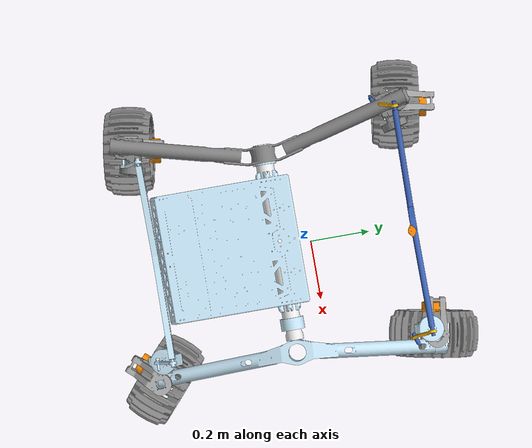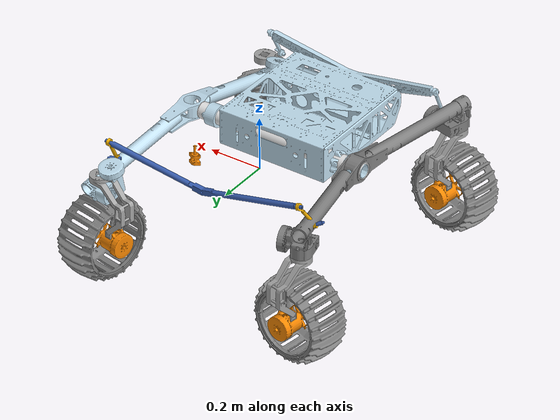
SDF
<sdf version="1.6">
    <model name="rover">
        <self_collide>true</self_collide>
        <link name="chassis">
            <frame name="chassis_frame">
                <pose>0 0 0 0 -0 0</pose>
            </frame>
            <visual name="chassis_0_chassis_visual">
                <pose>-0.018984610583012817564 -0.11072106393638803112 0.061040732012669463025
                    1.110223024625156146e-15 6.106226635438357028e-16 2.7755575615628895022e-17</pose>
                <geometry>
                    <mesh>
                        <uri>file://../meshes/chassis.stl</uri>
                    </mesh>
                </geometry>
                <material>
                    <ambient>0.76862745098039220171 0.88627450980392152857 0.95294117647058818044 1</ambient>
                    <diffuse>0.76862745098039220171 0.88627450980392152857 0.95294117647058818044 1</diffuse>
                    <specular>0.1 0.1 0.1 1</specular>
                    <emissive>0 0 0 0</emissive>
                </material>
            </visual>
            <collision name="chassis_0_chassis_visual">
                <pose>-0.018984610583012817564 -0.11072106393638803112 0.061040732012669463025
                    1.110223024625156146e-15 6.106226635438357028e-16 2.7755575615628895022e-17</pose>
                <geometry>
                    <mesh>
                        <uri>file://../meshes/chassis.stl</uri>
                    </mesh>
                </geometry>
            </collision>
            <inertial>
                <pose frame="chassis_frame">-0.019045218507636949012 -0.087993046828656579228
                    0.087385944696221115602 0 0 0</pose>
                <mass>7.6906345059941232378</mass>
                <inertia>
                    <ixx>0.44733237602572062386</ixx>
                    <ixy>-0.00012066720320076113743</ixy>
                    <ixz>-0.00020251363375001273179</ixz>
                    <iyy>0.19488738906767782977</iyy>
                    <iyz>0.0095851903407346023683</iyz>
                    <izz>0.56806231569085630095</izz>
                </inertia>
            </inertial>
        </link>

        <joint name="cross_right_join" type="fixed">
            <pose>-0.15498461058301302162 -0.11072106393638810051 0.061040732012669504658
                -1.5707963267948976682 -9.853229343548260352e-16 1.5707963267948970021</pose>
            <parent>chassis</parent>
            <child>crossbar</child>
            <axis>
                <xyz>0 0 1</xyz>
                <limit>
                    <effort>1</effort>
                    <velocity>20</velocity>
                </limit>
            </axis>
        </joint>

        <link name="crossbar">
            <frame name="crossbar_frame">
                <pose>0 0 0 0 -0 0</pose>
            </frame>
            <visual name="crossbar_0_crossbar_visual">
                <pose>-0.013984610583003154183 -0.11072106393638825317 0.061040732012669685069
                    9.8532293435482623241e-16 -9.4368957093138088999e-16 -8.0491169285323671687e-16</pose>
                <geometry>
                    <mesh>
                        <uri>file://../meshes/crossbar.stl</uri>
                    </mesh>
                </geometry>
                <material>
                    <ambient>0.91764705882352937127 0.91764705882352937127 0.91764705882352937127 1</ambient>
                    <diffuse>0.91764705882352937127 0.91764705882352937127 0.91764705882352937127 1</diffuse>
                    <specular>0.1 0.1 0.1 1</specular>
                    <emissive>0 0 0 0</emissive>
                </material>
            </visual>
            <collision name="crossbar_0_crossbar_visual">
                <pose>-0.013984610583003154183 -0.11072106393638825317 0.061040732012669685069
                    9.8532293435482623241e-16 -9.4368957093138088999e-16 -8.0491169285323671687e-16</pose>
                <geometry>
                    <mesh>
                        <uri>file://../meshes/crossbar.stl</uri>
                    </mesh>
                </geometry>
            </collision>
            <inertial>
                <pose frame="crossbar_frame">-0.01498529760685677302 -0.11181097571869365315
                    0.061036690632642422172 0 0 0</pose>
                <mass>0.61929085260862071216</mass>
                <inertia>
                    <ixx>0.00052067562621966527285</ixx>
                    <ixy>-2.4803302957222558809e-10</ixy>
                    <ixz>-1.5472398729557212259e-08</ixz>
                    <iyy>0.022394047093070145599</iyy>
                    <iyz>6.3774127556000729779e-09</iyz>
                    <izz>0.022366401167997831956</izz>
                </inertia>
            </inertial>
        </link>

        <link name="leftleg">
            <frame name="leftleg_frame">
                <pose>0 0 0 0 -0 0</pose>
            </frame>
            <visual name="leftleg_0_leftleg_visual">
                <pose>0.36221017026267893213 -0.11008829714327064697 0.056737664837007865948
                    0.003093691756726896832 -0.041423386501243872337 1.4962286455734958857</pose>
                <geometry>
                    <mesh>
                        <uri>file://../meshes/leftleg.stl</uri>
                    </mesh>
                </geometry>
                <material>
                    <ambient>0.76862745098039220171 0.88627450980392152857 0.95294117647058818044 1</ambient>
                    <diffuse>0.76862745098039220171 0.88627450980392152857 0.95294117647058818044 1</diffuse>
                    <specular>0.1 0.1 0.1 1</specular>
                    <emissive>0 0 0 0</emissive>
                </material>
            </visual>
            <collision name="leftleg_0_leftleg_visual">
                <pose>0.36221017026267893213 -0.11008829714327064697 0.056737664837007865948
                    0.003093691756726896832 -0.041423386501243872337 1.4962286455734958857</pose>
                <geometry>
                    <mesh>
                        <uri>file://../meshes/leftleg.stl</uri>
                    </mesh>
                </geometry>
            </collision>
            <inertial>
                <pose frame="leftleg_frame">0.33995157221003874382 -0.1090551977097206221
                    0.057296233354434504548 0 0 0</pose>
                <mass>3.3446456224080134412</mass>
                <inertia>
                    <ixx>0.49945091029511384795</ixx>
                    <ixy>-0.00023476695407842736803</ixy>
                    <ixz>-0.00019928523963247870968</ixz>
                    <iyy>0.0095684268043393690822</iyy>
                    <iyz>-0.0065795527112262825256</iyz>
                    <izz>0.50361213846775609859</izz>
                </inertia>
            </inertial>
        </link>

        <link name="rightleg">
            <frame name="rightleg_frame">
                <pose>0 0 0 0 -0 0</pose>
            </frame>
            <visual name="rightleg_0_rightleg_visual">
                <pose>-0.5903682448784290937 -0.042448825089024810886 0.21411510031031238954
                    -0.020571391745400468415 -0.042170290127263698743 1.423299785301544329</pose>
                <geometry>
                    <mesh>
                        <uri>file://../meshes/rightleg.stl</uri>
                    </mesh>
                </geometry>
                <material>
                    <ambient>0.49803921568627451677 0.49803921568627451677 0.49803921568627451677 1</ambient>
                    <diffuse>0.49803921568627451677 0.49803921568627451677 0.49803921568627451677 1</diffuse>
                    <specular>0.1 0.1 0.1 1</specular>
                    <emissive>0 0 0 0</emissive>
                </material>
            </visual>
            <collision name="rightleg_0_rightleg_visual">
                <pose>-0.5903682448784290937 -0.042448825089024810886 0.21411510031031238954
                    -0.020571391745400468415 -0.042170290127263698743 1.423299785301544329</pose>
                <geometry>
                    <mesh>
                        <uri>file://../meshes/rightleg.stl</uri>
                    </mesh>
                </geometry>
            </collision>
            <inertial>
                <pose frame="rightleg_frame">-0.36917837479022663771 -0.10658783963882711987
                    0.057339629036112255145 0 0 0</pose>
                <mass>3.3445666178870396834</mass>
                <inertia>
                    <ixx>0.49156963066927000794</ixx>
                    <ixy>0.0014055870503054026643</ixy>
                    <ixz>0.00025516296390700024576</ixz>
                    <iyy>0.0095431240585234344137</iyy>
                    <iyz>-0.0075396783718781144185</iyz>
                    <izz>0.49564703194241671591</izz>
                </inertia>
            </inertial>
        </link>

        <joint name="left_leg" type="revolute">
            <pose>0.28586538941699990435 -0.11072106393638840582 0.061040732012669934869
                -1.5707963267948974462 -0.041538685404483431662 1.5707963267948958919</pose>
            <parent>crossbar</parent>
            <child>leftleg</child>
            <axis>
                <xyz>0 0 1</xyz>
                <limit>
                    <effort>1</effort>
                    <velocity>20</velocity>
                </limit>
            </axis>
        </joint>

        <joint name="right_leg" type="revolute">
            <pose>-0.31583461058300627 -0.11072106393638782296 0.061040732012669379758
                1.5707963267948961139 -0.042632639835203593737 1.570796326794901443</pose>
            <parent>crossbar</parent>
            <child>rightleg</child>
            <axis>
                <xyz>0 0 1</xyz>
                <limit>
                    <effort>1</effort>
                    <velocity>20</velocity>
                </limit>
            </axis>
        </joint>

        <link name="ankle">
            <frame name="ankle_frame">
                <pose>0 0 0 0 -0 0</pose>
            </frame>
            <visual name="ankle_0_ankle_visual">
                <pose>-0.071463372585178361329 -1.1652578238954138801 0.18583772248268312643
                    -0.093930753454477058928 -0.079431358874689383942 -2.5769708359922121055</pose>
                <geometry>
                    <mesh>
                        <uri>file://../meshes/ankle.stl</uri>
                    </mesh>
                </geometry>
                <material>
                    <ambient>0.64705882352941179736 0.64705882352941179736 0.64705882352941179736 1</ambient>
                    <diffuse>0.64705882352941179736 0.64705882352941179736 0.64705882352941179736 1</diffuse>
                    <specular>0.1 0.1 0.1 1</specular>
                    <emissive>0 0 0 0</emissive>
                </material>
            </visual>
            <collision name="ankle_0_ankle_visual">
                <pose>-0.071463372585178361329 -1.1652578238954138801 0.18583772248268312643
                    -0.093930753454477058928 -0.079431358874689383942 -2.5769708359922121055</pose>
                <geometry>
                    <mesh>
                        <uri>file://../meshes/ankle.stl</uri>
                    </mesh>
                </geometry>
            </collision>
            <inertial>
                <pose frame="ankle_frame">-0.41132490899477608393 -0.51127561406555077639
                    -0.056053630275686432138 0 0 0</pose>
                <mass>0.40704209227750925981</mass>
                <inertia>
                    <ixx>0.0023687441431134445904</ixx>
                    <ixy>-0.00011109429449291893278</ixy>
                    <ixz>0.00011899695095959618137</ixz>
                    <iyy>0.0016301858278559946177</iyy>
                    <iyz>0.00080301967830594372499</iyz>
                    <izz>0.0011868660304272448877</izz>
                </inertia>
            </inertial>
        </link>

        <link name="anklemotor">
            <frame name="anklemotor_frame">
                <pose>0 0 0 0 -0 0</pose>
            </frame>
            <visual name="anklemotor_0_anklemotor_visual">
                <pose>-0.071463372585179027463 -1.1652578238954147682 0.18583772248268515259
                    -0.093930753454476767494 -0.079431358874689550476 -2.5769708359922072205</pose>
                <geometry>
                    <mesh>
                        <uri>file://../meshes/anklemotor.stl</uri>
                    </mesh>
                </geometry>
                <material>
                    <ambient>0.97254901960784312376 0.52941176470588235947 0.0039215686274509803377
                        1</ambient>
                    <diffuse>0.97254901960784312376 0.52941176470588235947 0.0039215686274509803377
                        1</diffuse>
                    <specular>0.1 0.1 0.1 1</specular>
                    <emissive>0 0 0 0</emissive>
                </material>
            </visual>
            <collision name="anklemotor_0_anklemotor_visual">
                <pose>-0.071463372585179027463 -1.1652578238954147682 0.18583772248268515259
                    -0.093930753454476767494 -0.079431358874689550476 -2.5769708359922072205</pose>
                <geometry>
                    <mesh>
                        <uri>file://../meshes/anklemotor.stl</uri>
                    </mesh>
                </geometry>
            </collision>
            <inertial>
                <pose frame="anklemotor_frame">-0.40968916125757898206 -0.49891881678275951106
                    -0.22448362246372244311 0 0 0</pose>
                <mass>0.67137253036121313787</mass>
                <inertia>
                    <ixx>0.0010191117139849328703</ixx>
                    <ixy>-5.3853662857452318301e-05</ixy>
                    <ixz>5.6432125257604249269e-07</ixz>
                    <iyy>0.00067672931100973493859</iyy>
                    <iyz>4.3450321059603098432e-06</iyz>
                    <izz>0.0010125342350121610373</izz>
                </inertia>
            </inertial>
        </link>

        <link name="wheel">
            <frame name="wheel_frame">
                <pose>0 0 0 0 -0 0</pose>
            </frame>
            <visual name="wheel_0_wheel_visual">
                <pose>-0.57909185567576637599 -1.0655224958163223015 -0.83443598795523965528
                    -2.753275222454361959 -0.39488247600369696944 -0.94888243733714527917</pose>
                <geometry>
                    <mesh>
                        <uri>file://../meshes/wheel.stl</uri>
                    </mesh>
                </geometry>
                <material>
                    <ambient>0.49803921568627451677 0.49803921568627451677 0.49803921568627451677 1</ambient>
                    <diffuse>0.49803921568627451677 0.49803921568627451677 0.49803921568627451677 1</diffuse>
                    <specular>0.1 0.1 0.1 1</specular>
                    <emissive>0 0 0 0</emissive>
                </material>
            </visual>
            <collision name="wheel_0_wheel_visual">
                <pose>-0.57909185567576637599 -1.0655224958163223015 -0.83443598795523965528
                    -2.753275222454361959 -0.39488247600369696944 -0.94888243733714527917</pose>
                <geometry>
                    <mesh>
                        <uri>file://../meshes/wheel.stl</uri>
                    </mesh>
                </geometry>
            </collision>
            <inertial>
                <pose frame="wheel_frame">-0.42123166936869971266 -0.57403392040053025092
                    -0.22644765768710883869 0 0 0</pose>
                <mass>1.8501383764095646889</mass>
                <inertia>
                    <ixx>0.021046829662359201746</ixx>
                    <ixy>0.0017930040634647134712</ixy>
                    <ixz>-5.5066377919514270347e-05</ixz>
                    <iyy>0.032435394315342591653</iyy>
                    <iyz>0.00019776908771795901872</iyz>
                    <izz>0.020795069893949139767</izz>
                </inertia>
            </inertial>
        </link>

        <joint name="fr_wheel" type="continuous">
            <pose>-0.42123353808338359627 -0.57404635246721680275 -0.22644783618645392131
                -1.5523922371361404959 -0.54913382703349544744 -0.16202029021946706688</pose>
            <parent>anklemotor</parent>
            <child>wheel</child>
            <axis>
                <xyz>0 0 1</xyz>
                <limit>
                    <effort>1</effort>
                    <velocity>20</velocity>
                </limit>
            </axis>
        </joint>

        <joint name="fr_ankle_motor_join" type="fixed">
            <pose>-0.38855374842347956132 -0.51999048566159833396 -0.18658432381666412159
                -1.5732240472268090858 -0.11781766767463958123 -1.7228866220106788809</pose>
            <parent>ankle</parent>
            <child>anklemotor</child>
            <axis>
                <xyz>0 0 1</xyz>
                <limit>
                    <effort>1</effort>
                    <velocity>20</velocity>
                </limit>
            </axis>
        </joint>

        <joint name="fr_ankle" type="revolute">
            <pose>-0.42145275351996286384 -0.57930091843673914287 0.014499101494077099028
                -0.013426940540500600929 0.0084830922255985583003 -2.5781535382368270248</pose>
            <parent>rightleg</parent>
            <child>ankle</child>
            <axis>
                <xyz>0 0 1</xyz>
                <limit>
                    <effort>1</effort>
                    <velocity>20</velocity>
                </limit>
            </axis>
        </joint>

        <link name="ankle_2">
            <frame name="ankle_2_frame">
                <pose>0 0 0 0 -0 0</pose>
            </frame>
            <visual name="ankle_2_0_ankle_visual">
                <pose>-0.071296383737228005706 -0.21576333931428132162 0.20091896170563081081
                    -0.093892758905011530768 -0.079371855911093303071 -2.5725330931763328302</pose>
                <geometry>
                    <mesh>
                        <uri>file://../meshes/ankle.stl</uri>
                    </mesh>
                </geometry>
                <material>
                    <ambient>0.64705882352941179736 0.64705882352941179736 0.64705882352941179736 1</ambient>
                    <diffuse>0.64705882352941179736 0.64705882352941179736 0.64705882352941179736 1</diffuse>
                    <specular>0.1 0.1 0.1 1</specular>
                    <emissive>0 0 0 0</emissive>
                </material>
            </visual>
            <collision name="ankle_2_0_ankle_visual">
                <pose>-0.071296383737228005706 -0.21576333931428132162 0.20091896170563081081
                    -0.093892758905011530768 -0.079371855911093303071 -2.5725330931763328302</pose>
                <geometry>
                    <mesh>
                        <uri>file://../meshes/ankle.stl</uri>
                    </mesh>
                </geometry>
            </collision>
            <inertial>
                <pose frame="ankle_2_frame">-0.41404167277477293974 0.4367032226847701315
                    -0.040996464754993966473 0 0 0</pose>
                <mass>0.40704209227750925981</mass>
                <inertia>
                    <ixx>0.0023696999616568343097</ixx>
                    <ixy>-0.000107866893321073378</ixy>
                    <ixz>0.00011551318793506496114</ixz>
                    <iyy>0.0016292134682331909507</iyy>
                    <iyz>0.00080353265812497067563</iyz>
                    <izz>0.0011868825715066490777</izz>
                </inertia>
            </inertial>
        </link>

        <link name="anklemotor_2">
            <frame name="anklemotor_2_frame">
                <pose>0 0 0 0 -0 0</pose>
            </frame>
            <visual name="anklemotor_2_0_anklemotor_visual">
                <pose>-0.071296383737229226951 -0.21576333931428168245 0.20091896170563358637
                    -0.093892758905010725856 -0.079371855911093136537 -2.5725330931763283893</pose>
                <geometry>
                    <mesh>
                        <uri>file://../meshes/anklemotor.stl</uri>
                    </mesh>
                </geometry>
                <material>
                    <ambient>0.97254901960784312376 0.52941176470588235947 0.0039215686274509803377
                        1</ambient>
                    <diffuse>0.97254901960784312376 0.52941176470588235947 0.0039215686274509803377
                        1</diffuse>
                    <specular>0.1 0.1 0.1 1</specular>
                    <emissive>0 0 0 0</emissive>
                </material>
            </visual>
            <collision name="anklemotor_2_0_anklemotor_visual">
                <pose>-0.071296383737229226951 -0.21576333931428168245 0.20091896170563358637
                    -0.093892758905010725856 -0.079371855911093136537 -2.5725330931763283893</pose>
                <geometry>
                    <mesh>
                        <uri>file://../meshes/anklemotor.stl</uri>
                    </mesh>
                </geometry>
            </collision>
            <inertial>
                <pose frame="anklemotor_2_frame">-0.41244893443267016675 0.44906718843957216247
                    -0.20942634308303054169 0 0 0</pose>
                <mass>0.67137253036121313787</mass>
                <inertia>
                    <ixx>0.0010195831809356353023</ixx>
                    <ixy>-5.2331428565332443765e-05</ixy>
                    <ixz>5.4550951862465145248e-07</ixz>
                    <iyy>0.00067625776577813836998</iyy>
                    <iyz>4.3437514553092894279e-06</iyz>
                    <izz>0.0010125343132930508371</izz>
                </inertia>
            </inertial>
        </link>

        <link name="wheel_2">
            <frame name="wheel_2_frame">
                <pose>0 0 0 0 -0 0</pose>
            </frame>
            <visual name="wheel_2_0_wheel_visual">
                <pose>-0.59191281132994022496 -0.13543399422394486464 0.37886146746635146476
                    0.60989431643729674626 0.60821660692030210527 -2.3856202431030828492</pose>
                <geometry>
                    <mesh>
                        <uri>file://../meshes/wheel.stl</uri>
                    </mesh>
                </geometry>
                <material>
                    <ambient>0.49803921568627451677 0.49803921568627451677 0.49803921568627451677 1</ambient>
                    <diffuse>0.49803921568627451677 0.49803921568627451677 0.49803921568627451677 1</diffuse>
                    <specular>0.1 0.1 0.1 1</specular>
                    <emissive>0 0 0 0</emissive>
                </material>
            </visual>
            <collision name="wheel_2_0_wheel_visual">
                <pose>-0.59191281132994022496 -0.13543399422394486464 0.37886146746635146476
                    0.60989431643729674626 0.60821660692030210527 -2.3856202431030828492</pose>
                <geometry>
                    <mesh>
                        <uri>file://../meshes/wheel.stl</uri>
                    </mesh>
                </geometry>
            </collision>
            <inertial>
                <pose frame="wheel_2_frame">-0.4236575504094848843 0.37390155682948983396
                    -0.21139113230179845671 0 0 0</pose>
                <mass>1.8501383764095646889</mass>
                <inertia>
                    <ixx>0.021077490409486369233</ixx>
                    <ixy>0.0017353037999128047199</ixy>
                    <ixz>-4.8096640530989524071e-05</ixz>
                    <iyy>0.032452151577053167664</iyy>
                    <iyz>0.00019723625957733008297</iyz>
                    <izz>0.020747651885111247083</izz>
                </inertia>
            </inertial>
        </link>

        <joint name="br_wheel" type="continuous">
            <pose>-0.42365943686257667711 0.37388912823338460445 -0.21139135930900027072
                1.5473808873313013024 0.83537753826255611855 2.9762558489189330224</pose>
            <parent>anklemotor_2</parent>
            <child>wheel_2</child>
            <axis>
                <xyz>0 0 1</xyz>
                <limit>
                    <effort>1</effort>
                    <velocity>20</velocity>
                </limit>
            </axis>
        </joint>

        <joint name="br_ankle_motor_join" type="fixed">
            <pose>-0.39122282940595881628 0.42808957830767546682 -0.17152555045945452883
                -1.5731538166635095077 -0.11780713592513426813 -1.7184541204398500192</pose>
            <parent>ankle_2</parent>
            <child>anklemotor_2</child>
            <axis>
                <xyz>0 0 1</xyz>
                <limit>
                    <effort>1</effort>
                    <velocity>20</velocity>
                </limit>
            </axis>
        </joint>

        <joint name="br_ankle" type="revolute">
            <pose>-0.42387231097985222927 0.36863360286004592803 0.029555563132896728318
                -0.013389134630214110516 0.0085426398791803651034 -2.5737124599288745408</pose>
            <parent>rightleg</parent>
            <child>ankle_2</child>
            <axis>
                <xyz>0 0 1</xyz>
                <limit>
                    <effort>1</effort>
                    <velocity>20</velocity>
                </limit>
            </axis>
        </joint>

        <link name="ankle_3">
            <frame name="ankle_3_frame">
                <pose>0 0 0 0 -0 0</pose>
            </frame>
            <visual name="ankle_3_0_ankle_visual">
                <pose>0.40643869698355328257 0.088640369813880487415 0.20525682905274339474
                    -0.066995113399902411766 -0.087979723050423522257 0.0036822953390785845805</pose>
                <geometry>
                    <mesh>
                        <uri>file://../meshes/ankle.stl</uri>
                    </mesh>
                </geometry>
                <material>
                    <ambient>0.64705882352941179736 0.64705882352941179736 0.64705882352941179736 1</ambient>
                    <diffuse>0.64705882352941179736 0.64705882352941179736 0.64705882352941179736 1</diffuse>
                    <specular>0.1 0.1 0.1 1</specular>
                    <emissive>0 0 0 0</emissive>
                </material>
            </visual>
            <collision name="ankle_3_0_ankle_visual">
                <pose>0.40643869698355328257 0.088640369813880487415 0.20525682905274339474
                    -0.066995113399902411766 -0.087979723050423522257 0.0036822953390785845805</pose>
                <geometry>
                    <mesh>
                        <uri>file://../meshes/ankle.stl</uri>
                    </mesh>
                </geometry>
            </collision>
            <inertial>
                <pose frame="ankle_3_frame">0.35008749608906419848 -0.63928276986723797659
                    -0.056778409261591999968 0 0 0</pose>
                <mass>0.40704209227750925981</mass>
                <inertia>
                    <ixx>0.0020702443386690022945</ixx>
                    <ixy>-0.00036131255391404746864</ixy>
                    <ixz>-0.00052896015970243343788</ixz>
                    <iyy>0.0019703152758473942326</iyy>
                    <iyz>-0.00059978318981331990144</iyz>
                    <izz>0.001145236386880281931</izz>
                </inertia>
            </inertial>
        </link>

        <link name="anklemotor_3">
            <frame name="anklemotor_3_frame">
                <pose>0 0 0 0 -0 0</pose>
            </frame>
            <visual name="anklemotor_3_0_anklemotor_visual">
                <pose>0.40643869698355622466 0.088640369813880237615 0.20525682905274650336
                    -0.066995113399902411766 -0.087979723050423036534 0.0036822953390838282159</pose>
                <geometry>
                    <mesh>
                        <uri>file://../meshes/anklemotor.stl</uri>
                    </mesh>
                </geometry>
                <material>
                    <ambient>0.97254901960784312376 0.52941176470588235947 0.0039215686274509803377
                        1</ambient>
                    <diffuse>0.97254901960784312376 0.52941176470588235947 0.0039215686274509803377
                        1</diffuse>
                    <specular>0.1 0.1 0.1 1</specular>
                    <emissive>0 0 0 0</emissive>
                </material>
            </visual>
            <collision name="anklemotor_3_0_anklemotor_visual">
                <pose>0.40643869698355622466 0.088640369813880237615 0.20525682905274650336
                    -0.066995113399902411766 -0.087979723050423036534 0.0036822953390838282159</pose>
                <geometry>
                    <mesh>
                        <uri>file://../meshes/anklemotor.stl</uri>
                    </mesh>
                </geometry>
            </collision>
            <inertial>
                <pose frame="anklemotor_3_frame">0.34356958927759961853 -0.64436212969751449631
                    -0.22546671760784542382 0 0 0</pose>
                <mass>0.67137253036121313787</mass>
                <inertia>
                    <ixx>0.00087459461567876428667</ixx>
                    <ixy>-0.00017727231816404851253</ixy>
                    <ixz>-8.7106338447610197502e-06</ixz>
                    <iyy>0.00082170335148765388626</iyy>
                    <iyz>-1.0009155858380626528e-05</iyz>
                    <izz>0.0010120772928404072038</izz>
                </inertia>
            </inertial>
        </link>

        <link name="wheel_3">
            <frame name="wheel_3_frame">
                <pose>0 0 0 0 -0 0</pose>
            </frame>
            <visual name="wheel_3_0_wheel_visual">
                <pose>1.1064462737994824604 -0.51112908388675504234 -0.57426922511780653657
                    2.9561240673954172209 0.19046120612249708981 1.6992892408349737909</pose>
                <geometry>
                    <mesh>
                        <uri>file://../meshes/wheel.stl</uri>
                    </mesh>
                </geometry>
                <material>
                    <ambient>0.49803921568627451677 0.49803921568627451677 0.49803921568627451677 1</ambient>
                    <diffuse>0.49803921568627451677 0.49803921568627451677 0.49803921568627451677 1</diffuse>
                    <specular>0.1 0.1 0.1 1</specular>
                    <emissive>0 0 0 0</emissive>
                </material>
            </visual>
            <collision name="wheel_3_0_wheel_visual">
                <pose>1.1064462737994824604 -0.51112908388675504234 -0.57426922511780653657
                    2.9561240673954172209 0.19046120612249708981 1.6992892408349737909</pose>
                <geometry>
                    <mesh>
                        <uri>file://../meshes/wheel.stl</uri>
                    </mesh>
                </geometry>
            </collision>
            <inertial>
                <pose frame="wheel_3_frame">0.39318187075113564255 -0.58676015761441591145
                    -0.22546483873732875436 0 0 0</pose>
                <mass>1.8501383764095646889</mass>
                <inertia>
                    <ixx>0.02581568406026825066</ixx>
                    <ixy>0.0059412001273701116333</ixy>
                    <ixz>6.738402105032155118e-05</ixz>
                    <iyy>0.027594900271284465709</iyy>
                    <iyz>0.00010089962723630451901</iyz>
                    <izz>0.02086670954009769291</izz>
                </inertia>
            </inertial>
        </link>

        <joint name="fl_wheel" type="continuous">
            <pose>0.3931900446228185908 -0.5867506048328156032 -0.22546472727392580238
                -1.5813194609647120981 0.26194503485836651002 2.4277975421701278869</pose>
            <parent>anklemotor_3</parent>
            <child>wheel_3</child>
            <axis>
                <xyz>0 0 1</xyz>
                <limit>
                    <effort>1</effort>
                    <velocity>20</velocity>
                </limit>
            </axis>
        </joint>

        <joint name="fl_ankle_motor_join" type="fixed">
            <pose>0.33649524595220209333 -0.61631947053429214645 -0.18685790156130099859
                -1.561950698124875192 -0.14367508306075324476 0.85854880359320118188</pose>
            <parent>ankle_3</parent>
            <child>anklemotor_3</child>
            <axis>
                <xyz>0 0 1</xyz>
                <limit>
                    <effort>1</effort>
                    <velocity>20</velocity>
                </limit>
            </axis>
        </joint>

        <joint name="fl_ankle" type="revolute">
            <pose>0.39413245132537932935 -0.58888941802989480667 0.015528265662125201318
                0.013414623837440445633 -6.5263362250859383723e-05 0.0048647605312962761623</pose>
            <parent>leftleg</parent>
            <child>ankle_3</child>
            <axis>
                <xyz>0 0 1</xyz>
                <limit>
                    <effort>1</effort>
                    <velocity>20</velocity>
                </limit>
            </axis>
        </joint>

        <link name="ankle_4">
            <frame name="ankle_4_frame">
                <pose>0 0 0 0 -0 0</pose>
            </frame>
            <visual name="ankle_4_0_ankle_visual">
                <pose>0.98550709826081206444 0.70163072241566726284 0.21348045466233042666
                    -0.073557683581799551686 -0.076406713604605949741 -1.0324813134472705656</pose>
                <geometry>
                    <mesh>
                        <uri>file://../meshes/ankle.stl</uri>
                    </mesh>
                </geometry>
                <material>
                    <ambient>0.64705882352941179736 0.64705882352941179736 0.64705882352941179736 1</ambient>
                    <diffuse>0.64705882352941179736 0.64705882352941179736 0.64705882352941179736 1</diffuse>
                    <specular>0.1 0.1 0.1 1</specular>
                    <emissive>0 0 0 0</emissive>
                </material>
            </visual>
            <collision name="ankle_4_0_ankle_visual">
                <pose>0.98550709826081206444 0.70163072241566726284 0.21348045466233042666
                    -0.073557683581799551686 -0.076406713604605949741 -1.0324813134472705656</pose>
                <geometry>
                    <mesh>
                        <uri>file://../meshes/ankle.stl</uri>
                    </mesh>
                </geometry>
            </collision>
            <inertial>
                <pose frame="ankle_4_frame">0.32728122004240017828 0.38128418369411815059
                    -0.043086904166963369001 0 0 0</pose>
                <mass>0.40704209227750925981</mass>
                <inertia>
                    <ixx>0.00166138215350153471</ixx>
                    <ixy>0.0001372229079840420066</ixy>
                    <ixz>-0.00079059251744176782788</ixz>
                    <iyy>0.0023589593248223004497</iyy>
                    <iyz>0.00015635528781224889024</iyz>
                    <izz>0.0011654545230728331068</izz>
                </inertia>
            </inertial>
        </link>

        <link name="anklemotor_4">
            <frame name="anklemotor_4_frame">
                <pose>0 0 0 0 -0 0</pose>
            </frame>
            <visual name="anklemotor_4_0_anklemotor_visual">
                <pose>0.98550709826081372977 0.70163072241566637466 0.2134804546623335908
                    -0.073557683581798913308 -0.07640671360460671302 -1.0324813134472647924</pose>
                <geometry>
                    <mesh>
                        <uri>file://../meshes/anklemotor.stl</uri>
                    </mesh>
                </geometry>
                <material>
                    <ambient>0.97254901960784312376 0.52941176470588235947 0.0039215686274509803377
                        1</ambient>
                    <diffuse>0.97254901960784312376 0.52941176470588235947 0.0039215686274509803377
                        1</diffuse>
                    <specular>0.1 0.1 0.1 1</specular>
                    <emissive>0 0 0 0</emissive>
                </material>
            </visual>
            <collision name="anklemotor_4_0_anklemotor_visual">
                <pose>0.98550709826081372977 0.70163072241566637466 0.2134804546623335908
                    -0.073557683581798913308 -0.07640671360460671302 -1.0324813134472647924</pose>
                <geometry>
                    <mesh>
                        <uri>file://../meshes/anklemotor.stl</uri>
                    </mesh>
                </geometry>
            </collision>
            <inertial>
                <pose frame="anklemotor_4_frame">0.31764408279776035204 0.38541925032279533703
                    -0.21165159557033480509 0 0 0</pose>
                <mass>0.67137253036121313787</mass>
                <inertia>
                    <ixx>0.00067980856890011089229</ixx>
                    <ixy>6.2315024285464280362e-05</ixy>
                    <ixz>-8.8022391293725904586e-06</ixz>
                    <iyy>0.0010162099793519197791</iyy>
                    <iyz>1.7095194869560671171e-06</iyz>
                    <izz>0.0010123567117547936211</izz>
                </inertia>
            </inertial>
        </link>

        <link name="wheel_4">
            <frame name="wheel_4_frame">
                <pose>0 0 0 0 -0 0</pose>
            </frame>
            <visual name="wheel_4_0_wheel_visual">
                <pose>0.79699604651706046354 -0.31529948288083459174 -0.21992176964138010486
                    2.4732933967503054618 0.6225928797093405187 0.46139468520570986465</pose>
                <geometry>
                    <mesh>
                        <uri>file://../meshes/wheel.stl</uri>
                    </mesh>
                </geometry>
                <material>
                    <ambient>0.49803921568627451677 0.49803921568627451677 0.49803921568627451677 1</ambient>
                    <diffuse>0.49803921568627451677 0.49803921568627451677 0.49803921568627451677 1</diffuse>
                    <specular>0.1 0.1 0.1 1</specular>
                    <emissive>0 0 0 0</emissive>
                </material>
            </visual>
            <collision name="wheel_4_0_wheel_visual">
                <pose>0.79699604651706046354 -0.31529948288083459174 -0.21992176964138010486
                    2.4732933967503054618 0.6225928797093405187 0.46139468520570986465</pose>
                <geometry>
                    <mesh>
                        <uri>file://../meshes/wheel.stl</uri>
                    </mesh>
                </geometry>
            </collision>
            <inertial>
                <pose frame="wheel_4_frame">0.3924740639733309 0.3720425377439923742
                    -0.21260191652476467805 0 0 0</pose>
                <mass>1.8501383764095646889</mass>
                <inertia>
                    <ixx>0.032343605820285885322</ixx>
                    <ixy>-0.002070351723096397218</ixy>
                    <ixz>-1.2929865376946106416e-05</ixz>
                    <iyy>0.021137829758793576923</iyy>
                    <iyz>8.7574909769705343017e-05</iyz>
                    <izz>0.02079585829257154031</izz>
                </inertia>
            </inertial>
        </link>

        <joint name="bl_wheel" type="continuous">
            <pose>0.3924864446641900817 0.37204034816742931335 -0.21260198350990644478
                -1.5671040493452730313 0.87663865088730785757 1.3966407949530332822</pose>
            <parent>anklemotor_4</parent>
            <child>wheel_4</child>
            <axis>
                <xyz>0 0 1</xyz>
                <limit>
                    <effort>1</effort>
                    <velocity>20</velocity>
                </limit>
            </axis>
        </joint>

        <joint name="bl_ankle_motor_join" type="fixed">
            <pose>0.33862518201777302984 0.40552984944158093628 -0.17314919276804671688
                -1.5574767862149723197 -0.13114228507244962696 -0.1787664424293675669</pose>
            <parent>ankle_4</parent>
            <child>anklemotor_4</child>
            <axis>
                <xyz>0 0 1</xyz>
                <limit>
                    <effort>1</effort>
                    <velocity>20</velocity>
                </limit>
            </axis>
        </joint>

        <joint name="bl_ankle" type="revolute">
            <pose>0.39390793655864420053 0.36855322730229339578 0.028372921086872948671
                0.0068844548859908734698 0.011513590534729405482 -1.0318750311372648643</pose>
            <parent>leftleg</parent>
            <child>ankle_4</child>
            <axis>
                <xyz>0 0 1</xyz>
                <limit>
                    <effort>1</effort>
                    <velocity>20</velocity>
                </limit>
            </axis>
        </joint>

        <link name="diffmount">
            <frame name="diffmount_frame">
                <pose>0 0 0 0 -0 0</pose>
            </frame>
            <visual name="diffmount_0_diffmount_visual">
                <pose>0.023508139093190133506 0.33338290456348551594 0.2120035370418883458
                    0.018055748425093349346 5.5511151231257787578e-16 0.07986827319619614618</pose>
                <geometry>
                    <mesh>
                        <uri>file://../meshes/diffmount.stl</uri>
                    </mesh>
                </geometry>
                <material>
                    <ambient>0.97254901960784312376 0.52941176470588235947 0.0039215686274509803377
                        1</ambient>
                    <diffuse>0.97254901960784312376 0.52941176470588235947 0.0039215686274509803377
                        1</diffuse>
                    <specular>0.1 0.1 0.1 1</specular>
                    <emissive>0 0 0 0</emissive>
                </material>
            </visual>
            <collision name="diffmount_0_diffmount_visual">
                <pose>0.023508139093190133506 0.33338290456348551594 0.2120035370418883458
                    0.018055748425093349346 5.5511151231257787578e-16 0.07986827319619614618</pose>
                <geometry>
                    <mesh>
                        <uri>file://../meshes/diffmount.stl</uri>
                    </mesh>
                </geometry>
            </collision>
            <inertial>
                <pose frame="diffmount_frame">-0.018984731760153972235 0.32050479857721331234
                    0.10754626271375378188 0 0 0</pose>
                <mass>0.04126774183176205868</mass>
                <inertia>
                    <ixx>1.230123825544815457e-05</ixx>
                    <ixy>1.9449697741171664545e-10</ixy>
                    <ixz>1.6154421394973760843e-09</ixz>
                    <iyy>4.6158580876904625436e-06</iyy>
                    <iyz>-1.4088534116971570592e-10</iyz>
                    <izz>1.4223623820227331019e-05</izz>
                </inertia>
            </inertial>
        </link>

        <joint name="diffmount_join" type="fixed">
            <pose>-0.037484610583013076857 0.33527893606361253154 0.10755952820599778974
                -1.5707963267948956698 6.2866740546731004924e-16 3.4368525624018690139e-16</pose>
            <parent>chassis</parent>
            <child>diffmount</child>
            <axis>
                <xyz>0 0 1</xyz>
                <limit>
                    <effort>1</effort>
                    <velocity>20</velocity>
                </limit>
            </axis>
        </joint>

        <link name="diffbar">
            <frame name="diffbar_frame">
                <pose>0 0 0 0 -0 0</pose>
            </frame>
            <visual name="diffbar_0_diffbar_visual">
                <pose>0.043710741273345336821 0.32568290456348775175 0.20128126331575682539
                    0.03449037293273642113 0.20251014570365621914 0.081538109989379423115</pose>
                <geometry>
                    <mesh>
                        <uri>file://../meshes/diffbar.stl</uri>
                    </mesh>
                </geometry>
                <material>
                    <ambient>0.2313725490196078538 0.38039215686274507888 0.7058823529411765163 1</ambient>
                    <diffuse>0.2313725490196078538 0.38039215686274507888 0.7058823529411765163 1</diffuse>
                    <specular>0.1 0.1 0.1 1</specular>
                    <emissive>0 0 0 0</emissive>
                </material>
            </visual>
            <collision name="diffbar_0_diffbar_visual">
                <pose>0.043710741273345336821 0.32568290456348775175 0.20128126331575682539
                    0.03449037293273642113 0.20251014570365621914 0.081538109989379423115</pose>
                <geometry>
                    <mesh>
                        <uri>file://../meshes/diffbar.stl</uri>
                    </mesh>
                </geometry>
            </collision>
            <inertial>
                <pose frame="diffbar_frame">-0.017478679773423592969 0.34757893606361495165
                    0.13781532187534195621 0 0 0</pose>
                <mass>0.41604445274443696556</mass>
                <inertia>
                    <ixx>0.00029004323264088943679</ixx>
                    <ixy>-1.3145148790711812937e-09</ixy>
                    <ixz>0.00095117432408280296312</ixz>
                    <iyy>0.01962485618007669616</iyy>
                    <iyz>1.0492655421385904455e-07</iyz>
                    <izz>0.019361104030107444823</izz>
                </inertia>
            </inertial>
        </link>

        <joint name="diffbar" type="revolute">
            <pose>-0.018984615397463953934 0.34757893606361556227 0.10754618149635626623
                1.5707963267948974462 0.2031668120994071236 4.1958473076262934993e-16</pose>
            <parent>diffmount</parent>
            <child>diffbar</child>
            <axis>
                <xyz>0 0 1</xyz>
                <limit>
                    <effort>1</effort>
                    <velocity>20</velocity>
                    <lower>0</lower>
                    <upper>0</upper>
                </limit>
            </axis>
        </joint>

        <link name="diffend_2">
            <frame name="diffend_2_frame">
                <pose>0 0 0 0 -0 0</pose>
            </frame>
            <visual name="diffend_2_0_diffend_visual">
                <pose>0.086964046899988572958 -0.077123880121216431549 0.20949866887522775039
                    -2.2210061247468240175 -0.34453250782200517399 -2.736197586339584209</pose>
                <geometry>
                    <mesh>
                        <uri>file://../meshes/diffend.stl</uri>
                    </mesh>
                </geometry>
                <material>
                    <ambient>0.2313725490196078538 0.38039215686274507888 0.7058823529411765163 1</ambient>
                    <diffuse>0.2313725490196078538 0.38039215686274507888 0.7058823529411765163 1</diffuse>
                    <specular>0.1 0.1 0.1 1</specular>
                    <emissive>0 0 0 0</emissive>
                </material>
            </visual>
            <collision name="diffend_2_0_diffend_visual">
                <pose>0.086964046899988572958 -0.077123880121216431549 0.20949866887522775039
                    -2.2210061247468240175 -0.34453250782200517399 -2.736197586339584209</pose>
                <geometry>
                    <mesh>
                        <uri>file://../meshes/diffend.stl</uri>
                    </mesh>
                </geometry>
            </collision>
            <inertial>
                <pose frame="diffend_2_frame">0.38756940407505313662 0.29437631988050483312
                    0.055036393944299641379 0 0 0</pose>
                <mass>0.0171894836514326875</mass>
                <inertia>
                    <ixx>6.7657464768502121855e-07</ixx>
                    <ixy>-7.230465753499137271e-07</ixy>
                    <ixz>1.4574724593193077177e-07</ixz>
                    <iyy>2.4754529635474805952e-06</iyy>
                    <iyz>5.1319010176483491191e-08</iyz>
                    <izz>2.7197000643989336735e-06</izz>
                </inertia>
            </inertial>
        </link>

        <joint name="diffend_left_join" type="fixed">
            <pose>0.40426600250801236758 0.30025535313025775164 0.053851334870506306629
                -1.8619274120612665513 -1.3359274760854644715 -0.94867820928403723268</pose>
            <parent>leftleg</parent>
            <child>diffend_2</child>
            <axis>
                <xyz>0 0 1</xyz>
                <limit>
                    <effort>1</effort>
                    <velocity>20</velocity>
                </limit>
            </axis>
        </joint>

        <link name="difflink">
            <frame name="difflink_frame">
                <pose>0 0 0 0 -0 0</pose>
            </frame>
            <visual name="difflink_0_difflink_visual">
                <pose>0.75743692432315323781 0.49974300109871433451 0.29952764699309730734
                    -1.3521168931209945896 -0.1648990027050759033 0.17168406152350071392</pose>
                <geometry>
                    <mesh>
                        <uri>file://../meshes/difflink.stl</uri>
                    </mesh>
                </geometry>
                <material>
                    <ambient>0.98039215686274505668 0.71372549019607844922 0.0039215686274509803377
                        1</ambient>
                    <diffuse>0.98039215686274505668 0.71372549019607844922 0.0039215686274509803377
                        1</diffuse>
                    <specular>0.1 0.1 0.1 1</specular>
                    <emissive>0 0 0 0</emissive>
                </material>
            </visual>
            <collision name="difflink_0_difflink_visual">
                <pose>0.75743692432315323781 0.49974300109871433451 0.29952764699309730734
                    -1.3521168931209945896 -0.1648990027050759033 0.17168406152350071392</pose>
                <geometry>
                    <mesh>
                        <uri>file://../meshes/difflink.stl</uri>
                    </mesh>
                </geometry>
            </collision>
            <inertial>
                <pose frame="difflink_frame">0.37350637073938092181 0.31960919434532736316
                    0.10571978755303880482 0 0 0</pose>
                <mass>0.038178202342815055481</mass>
                <inertia>
                    <ixx>7.134908620188328888e-05</ixx>
                    <ixy>3.8151683605089676087e-06</ixy>
                    <ixz>6.6459402159176221895e-06</ixz>
                    <iyy>5.5071730473868088322e-05</iyy>
                    <iyz>-2.9455763459531507045e-05</iyz>
                    <izz>1.8686533163963594699e-05</izz>
                </inertia>
            </inertial>
        </link>

        <joint name="closing_diff_bl" type="ball">
            <parent>diffend_2</parent>
            <child>difflink</child>
            <axis>
                <limit>
                    <lower>-0.261799</lower>
                    <upper>0.261799</upper>
                </limit>
            </axis>
        </joint>

        <joint name="diff_tl" type="ball">
            <pose>0.36721610744159849382 0.34757893606361556227 0.15585150042878997967
                2.0506040695836635912 -1.2977088582375180259 -2.0353100934862733418</pose>
            <parent>diffbar</parent>
            <child>difflink</child>
            <axis>
                <limit>
                    <lower>-0.261799</lower> <!-- -15 degrees in radians -->
                    <upper>0.261799</upper>
                </limit>
            </axis>
        </joint>

        <link name="diffend">
            <frame name="diffend_frame">
                <pose>0 0 0 0 -0 0</pose>
            </frame>
            <visual name="diffend_0_diffend_visual">
                <pose>-0.20730863929532697409 0.62885425722309662433 -0.18832079287962899539
                    -3.0760431945665893672 0.29586374291778921863 0.63406359005769830084</pose>
                <geometry>
                    <mesh>
                        <uri>file://../meshes/diffend.stl</uri>
                    </mesh>
                </geometry>
                <material>
                    <ambient>0.2313725490196078538 0.38039215686274507888 0.7058823529411765163 1</ambient>
                    <diffuse>0.2313725490196078538 0.38039215686274507888 0.7058823529411765163 1</diffuse>
                    <specular>0.1 0.1 0.1 1</specular>
                    <emissive>0 0 0 0</emissive>
                </material>
            </visual>
            <collision name="diffend_0_diffend_visual">
                <pose>-0.20730863929532697409 0.62885425722309662433 -0.18832079287962899539
                    -3.0760431945665893672 0.29586374291778921863 0.63406359005769830084</pose>
                <geometry>
                    <mesh>
                        <uri>file://../meshes/diffend.stl</uri>
                    </mesh>
                </geometry>
            </collision>
            <inertial>
                <pose frame="diffend_frame">-0.42726672304258350721 0.28317206349806112176
                    0.10212169036994953042 0 0 0</pose>
                <mass>0.0171894836514326875</mass>
                <inertia>
                    <ixx>1.0261834487669037448e-06</ixx>
                    <ixy>-6.3613454749738494258e-07</ixy>
                    <ixz>8.0151872893040940267e-07</ixz>
                    <iyy>2.4925445551673612268e-06</iyy>
                    <iyz>2.9924606468259214028e-07</iyz>
                    <izz>2.3529996716968857009e-06</izz>
                </inertia>
            </inertial>
        </link>

        <joint name="diffend_right_join" type="fixed">
            <pose>-0.44247573240134774331 0.27749379793288275753 0.10927620857091185913
                -1.1277727216537536403 -0.34595260740530425769 1.7685930445325686033</pose>
            <parent>rightleg</parent>
            <child>diffend</child>
            <axis>
                <xyz>0 0 1</xyz>
                <limit>
                    <effort>1</effort>
                    <velocity>20</velocity>
                </limit>
            </axis>
        </joint>

        <link name="difflink_2">
            <frame name="difflink_2_frame">
                <pose>0 0 0 0 -0 0</pose>
            </frame>
            <visual name="difflink_2_0_difflink_visual">
                <pose>-0.75369867263241729916 0.35692192647139481254 0.45815057839003725526
                    -0.27205847520918402527 -0.39272840751514859203 -3.0937142414585596661</pose>
                <geometry>
                    <mesh>
                        <uri>file://../meshes/difflink.stl</uri>
                    </mesh>
                </geometry>
                <material>
                    <ambient>0.98039215686274505668 0.71372549019607844922 0.0039215686274509803377
                        1</ambient>
                    <diffuse>0.98039215686274505668 0.71372549019607844922 0.0039215686274509803377
                        1</diffuse>
                    <specular>0.1 0.1 0.1 1</specular>
                    <emissive>0 0 0 0</emissive>
                </material>
            </visual>
            <collision name="difflink_2_0_difflink_visual">
                <pose>-0.75369867263241729916 0.35692192647139481254 0.45815057839003725526
                    -0.27205847520918402527 -0.39272840751514859203 -3.0937142414585596661</pose>
                <geometry>
                    <mesh>
                        <uri>file://../meshes/difflink.stl</uri>
                    </mesh>
                </geometry>
            </collision>
            <inertial>
                <pose frame="difflink_2_frame">-0.40933500655631821497 0.31669720170202259046
                    0.14636863264077237812 0 0 0</pose>
                <mass>0.038178202342815055481</mass>
                <inertia>
                    <ixx>6.9635817026992752788e-05</ixx>
                    <ixy>-6.9319161787894149028e-06</ixy>
                    <ixz>-1.1059575186605847456e-05</ixz>
                    <iyy>5.1469811072351063911e-05</iyy>
                    <iyz>-3.0906340312727737397e-05</iyz>
                    <izz>2.4001721740368553117e-05</izz>
                </inertia>
            </inertial>
        </link>

        <joint name="closing_diff_br" type="ball">
            <pose>-0.42018647057532404476 0.28581546734043072888 0.098791046410866723004
                -2.4424363901660610665 -1.0158567024141180735 -0.42270258282768780056</pose>
            <parent>diffend</parent>
            <child>difflink_2</child>
            <axis>
                <limit>
                    <lower>-0.261799</lower>
                    <upper>0.261799</upper>
                </limit>
            </axis>
        </joint>

        <joint name="diff_tr" type="ball">
            <pose>-0.39848354253731232966 0.34757893606361467409 0.19394621887067842181
                1.8024170159898449395 -0.25088057068533953231 1.5123107930337305049</pose>
            <parent>diffbar</parent>
            <child>difflink_2</child>
            <axis>
                <limit>
                    <lower>-0.261799</lower>
                    <upper>0.261799</upper>
                </limit>
            </axis>
        </joint>

    </model>
</sdf>
